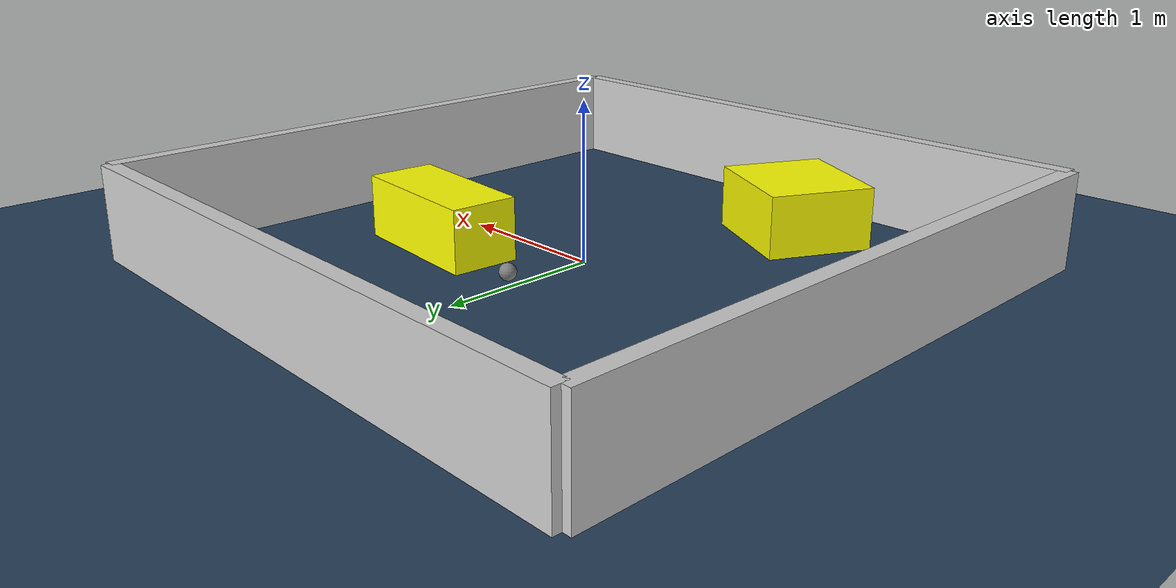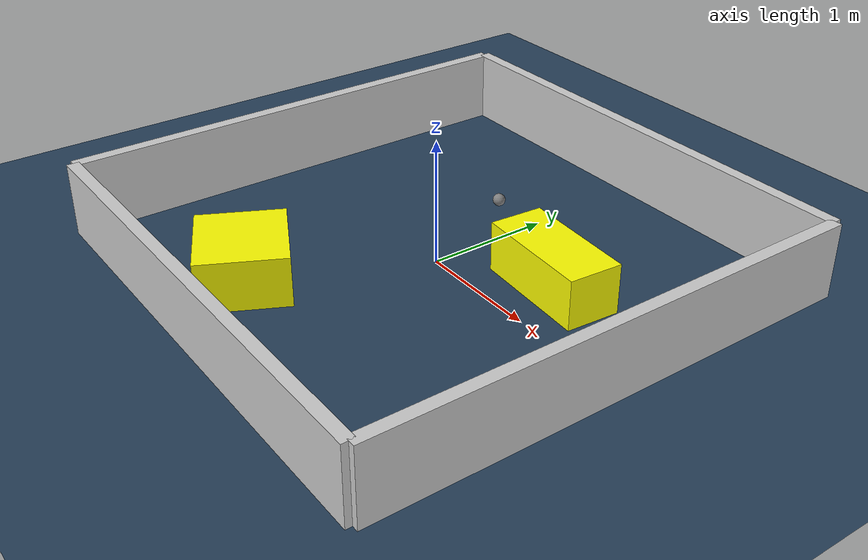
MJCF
<?xml version="1.0" ?>
<mujoco model="generated_environment">
  <option timestep="0.01" integrator="RK4" cone="elliptic"/>
  <default>
    <geom density="1"/>
  </default>
  <asset>
    <texture builtin="gradient" height="3072" rgb1="0.3 0.5 0.7" rgb2="0 0 0" type="skybox" width="512"/>
    <texture builtin="checker" height="300" mark="edge" markrgb="0.8 0.8 0.8" name="groundplane" rgb1="0.2 0.3 0.4" rgb2="0.1 0.2 0.3" type="2d" width="300"/>
    <material name="groundplane" reflectance="0.2" texrepeat="5 5" texture="groundplane" texuniform="true"/>
    <material name="robot" rgba="0.0 1.0 0.0 1"/>
  </asset>
  <worldbody>
    <light dir="0 0 -1" directional="true" pos="0 0 1.5"/>
    <geom condim="4" friction="1.0 0.005 0.001" material="groundplane" name="floor" size="0 0 0.05" type="plane"/>
    <body name="walls">
      <geom name="wall_1" condim="4" pos="-2.0 0.0 0.3" rgba="0.800000011920929 0.800000011920929 0.800000011920929 1.0" size="0.05 2.0 0.3" type="box"/>
      <geom name="wall_2" condim="4" pos="2.0 0.0 0.3" rgba="0.800000011920929 0.800000011920929 0.800000011920929 1.0" size="0.05 2.0 0.3" type="box"/>
      <geom name="wall_3" condim="4" pos="0.0 -2.0 0.3" rgba="0.800000011920929 0.800000011920929 0.800000011920929 1.0" size="2.0 0.05 0.3" type="box"/>
      <geom name="wall_4" condim="4" pos="0.0 2.0 0.3" rgba="0.800000011920929 0.800000011920929 0.800000011920929 1.0" size="2.0 0.05 0.3" type="box"/>
    </body>
    <body name="robot">
      <joint name="joint_x" type="slide" pos="0 0 0" axis="1 0 0"/>
      <joint name="joint_y" type="slide" pos="0 0 0" axis="0 1 0"/>
      <geom name="robot" type="sphere" pos="-0.2101875024686155 0.7670469911714646 0.2" size="0.05" mass="5." friction="1.0 0.005 0.0001" condim="4"/>
      <site name="sensor_ball"/>
    </body>
    <body name="obstacle_1_movable">
      <geom name="obstacle_1_movable" condim="4" pos="-0.5697072716555038 -1.3214655520213177 0.2" euler="0 0 243.05960312746168" friction="1.0 0.005 0.001" rgba="1 1 0 1" size="0.34235591839982427 0.3650464032854299 0.2" type="box" mass="0.1"/>
      <joint type="free"/>
    </body>
    <body name="obstacle_2_movable">
      <geom name="obstacle_2_movable" condim="4" pos="0.8207398506139154 0.4450817763100252 0.2" euler="0 0 175.73138937798595" friction="1.0 0.005 0.001" rgba="1 1 0 1" size="0.478944462122409 0.21622273563534972 0.2" type="box" mass="0.1"/>
      <joint type="free"/>
    </body>
  </worldbody>
  <actuator>
    <motor name="actuator_x" joint="joint_x" gear="1" ctrlrange="-1 1"/>
    <motor name="actuator_y" joint="joint_y" gear="1" ctrlrange="-1 1"/>
  </actuator>
</mujoco>
